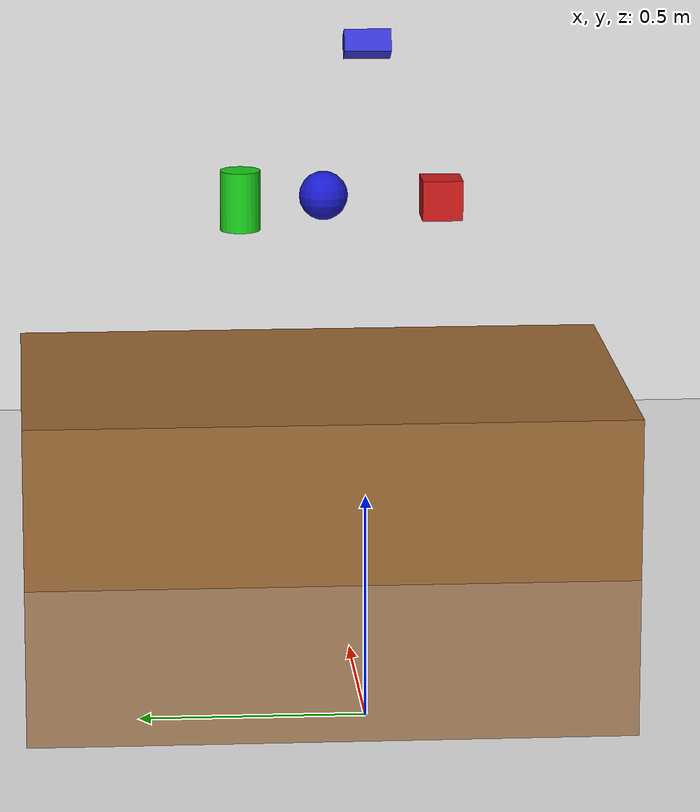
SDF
<?xml version="1.0" ?>
<sdf version="1.6">
  <world name="sam_vision_world">
    <!-- Basic lighting -->
    <include>
      <uri>model://sun</uri>
    </include>

    <include>
      <uri>model://ground_plane</uri>
    </include>

    <!-- Static RGB-D Camera for Vision Pipeline -->
    <model name="vision_camera">
      <static>true</static>
      <pose>0 0 1.5 0 0.5 0</pose>

      <link name="camera_link">
        <visual name="camera_visual">
          <geometry>
            <box>
              <size>0.05 0.1 0.05</size>
            </box>
          </geometry>
          <material>
            <ambient>0.2 0.2 0.8 1</ambient>
            <diffuse>0.2 0.2 0.8 1</diffuse>
          </material>
        </visual>

        <!-- RGB Camera Sensor -->
        <sensor name="rgb_camera" type="camera">
          <update_rate>30</update_rate>
          <camera name="rgb_camera">
            <horizontal_fov>1.047</horizontal_fov>
            <image>
              <width>640</width>
              <height>480</height>
              <format>R8G8B8</format>
            </image>
            <clip>
              <near>0.1</near>
              <far>100</far>
            </clip>
            <noise>
              <type>gaussian</type>
              <mean>0.0</mean>
              <stddev>0.007</stddev>
            </noise>
          </camera>
          <plugin name="camera_controller" filename="libgazebo_ros_camera.so">
            <ros>
              <namespace>/camera</namespace>
              <remapping>image_raw:=image_raw</remapping>
              <remapping>camera_info:=camera_info</remapping>
            </ros>
            <camera_name>rgb_camera</camera_name>
            <frame_name>camera_link_optical</frame_name>
            <hack_baseline>0.07</hack_baseline>
          </plugin>
        </sensor>

        <!-- Depth Camera Sensor -->
        <sensor name="depth_camera" type="depth">
          <update_rate>30</update_rate>
          <camera name="depth_camera">
            <horizontal_fov>1.047</horizontal_fov>
            <image>
              <width>640</width>
              <height>480</height>
            </image>
            <clip>
              <near>0.1</near>
              <far>10</far>
            </clip>
            <noise>
              <type>gaussian</type>
              <mean>0.0</mean>
              <stddev>0.01</stddev>
            </noise>
          </camera>
          <plugin name="depth_camera_controller" filename="libgazebo_ros_camera.so">
            <ros>
              <namespace>/camera</namespace>
              <remapping>depth/image_raw:=depth/image_raw</remapping>
              <remapping>depth/camera_info:=depth/camera_info</remapping>
            </ros>
            <camera_name>depth_camera</camera_name>
            <frame_name>camera_link_optical</frame_name>
            <hack_baseline>0.07</hack_baseline>
          </plugin>
        </sensor>
      </link>
    </model>

    <!-- Add some objects for the vision system to detect -->
    <model name="table">
      <static>true</static>
      <pose>1.5 0 0 0 0 0</pose>
      <link name="link">
        <collision name="collision">
          <geometry>
            <box>
              <size>1.0 1.5 0.8</size>
            </box>
          </geometry>
        </collision>
        <visual name="visual">
          <geometry>
            <box>
              <size>1.0 1.5 0.8</size>
            </box>
          </geometry>
          <material>
            <ambient>0.6 0.4 0.2 1</ambient>
            <diffuse>0.6 0.4 0.2 1</diffuse>
          </material>
        </visual>
      </link>
    </model>

    <!-- Object 1: Red Box -->
    <model name="red_box">
      <pose>1.5 -0.3 0.85 0 0 0</pose>
      <link name="link">
        <collision name="collision">
          <geometry>
            <box>
              <size>0.1 0.1 0.1</size>
            </box>
          </geometry>
        </collision>
        <visual name="visual">
          <geometry>
            <box>
              <size>0.1 0.1 0.1</size>
            </box>
          </geometry>
          <material>
            <ambient>0.8 0.1 0.1 1</ambient>
            <diffuse>0.8 0.1 0.1 1</diffuse>
          </material>
        </visual>
      </link>
    </model>

    <!-- Object 2: Green Cylinder -->
    <model name="green_cylinder">
      <pose>1.5 0.2 0.85 0 0 0</pose>
      <link name="link">
        <collision name="collision">
          <geometry>
            <cylinder>
              <radius>0.05</radius>
              <length>0.15</length>
            </cylinder>
          </geometry>
        </collision>
        <visual name="visual">
          <geometry>
            <cylinder>
              <radius>0.05</radius>
              <length>0.15</length>
            </cylinder>
          </geometry>
          <material>
            <ambient>0.1 0.8 0.1 1</ambient>
            <diffuse>0.1 0.8 0.1 1</diffuse>
          </material>
        </visual>
      </link>
    </model>

    <!-- Object 3: Blue Sphere -->
    <model name="blue_sphere">
      <pose>1.4 0 0.88 0 0 0</pose>
      <link name="link">
        <collision name="collision">
          <geometry>
            <sphere>
              <radius>0.06</radius>
            </sphere>
          </geometry>
        </collision>
        <visual name="visual">
          <geometry>
            <sphere>
              <radius>0.06</radius>
            </sphere>
          </geometry>
          <material>
            <ambient>0.1 0.1 0.8 1</ambient>
            <diffuse>0.1 0.1 0.8 1</diffuse>
          </material>
        </visual>
      </link>
    </model>

    <!-- Physics settings -->
    <physics name="default_physics" default="true" type="ode">
      <max_step_size>0.001</max_step_size>
      <real_time_factor>1</real_time_factor>
      <real_time_update_rate>1000</real_time_update_rate>
    </physics>

    <!-- Scene settings -->
    <scene>
      <ambient>0.5 0.5 0.5 1</ambient>
      <background>0.7 0.7 0.7 1</background>
      <shadows>true</shadows>
    </scene>
  </world>
</sdf>
